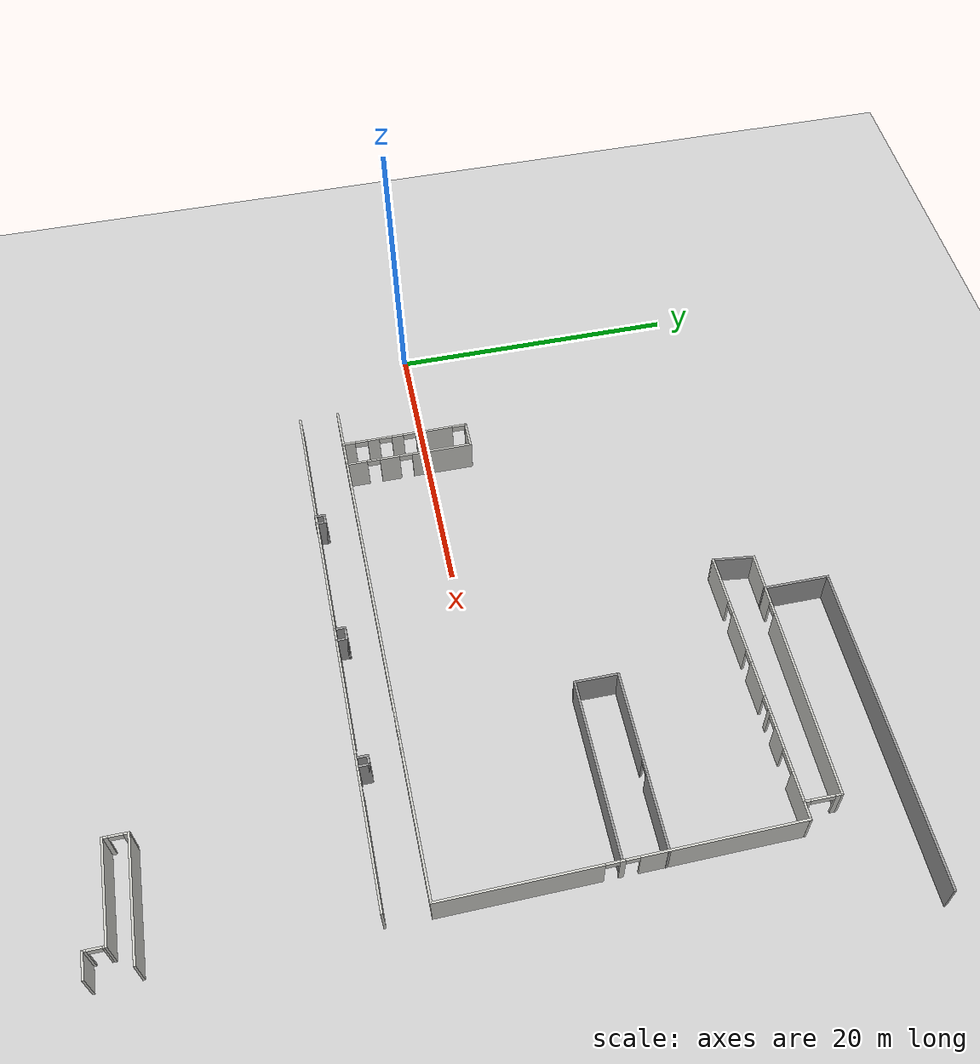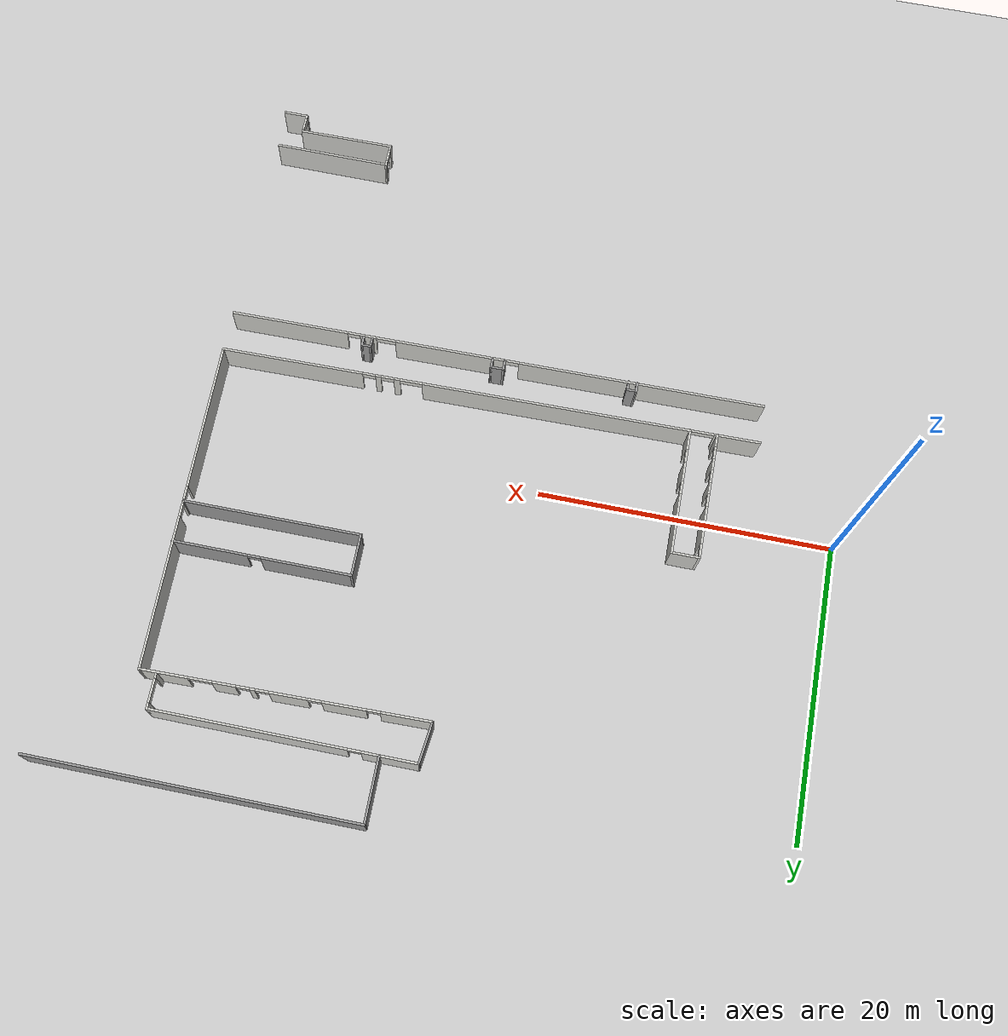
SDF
<sdf version="1.6">
 <world name="default">
  <model name="ground_plane">
   <static>1</static>
   <link name="link">
    <collision name="collision">
     <geometry><plane><normal>0 0 1</normal><size>100 100</size></plane></geometry>
     <surface><friction><ode><mu>100</mu><mu2>50</mu2></ode></friction></surface>
    </collision>
    <visual name="visual">
     <cast_shadows>0</cast_shadows>
     <geometry><plane><normal>0 0 1</normal><size>100 100</size></plane></geometry>
     <material>
      <script><uri>file://media/materials/scripts/gazebo.material</uri><name>Gazebo/Grey</name></script>
     </material>
    </visual>
   </link>
  </model>
  <model name="hospital_LG_detailed">
   <pose>51.8521 -11.413 0 0 -0 0</pose>
   <link name="Wall_10">
    <pose>-27.1821 5.83422 0 0 -0 0.009948</pose>
    <visual name="Wall_10_Visual_0">
     <pose>-17.1568 0 1.25 0 -0 0</pose>
     <geometry><box><size>3.16982 0.15 2.5</size></box></geometry>
     <material>
      <script><uri>file://media/materials/scripts/gazebo.material</uri><name>Gazebo/CeilingTiled</name></script>
      <ambient>1 1 1 1</ambient>
     </material>
     <meta><layer>0</layer></meta>
    </visual>
    <collision name="Wall_10_Collision_0">
     <geometry><box><size>3.16982 0.15 2.5</size></box></geometry>
     <pose>-17.1568 0 1.25 0 -0 0</pose>
    </collision>
    <visual name="Wall_10_Visual_1">
     <pose>-4.69451 0 1.25 0 -0 0</pose>
     <geometry><box><size>18.5953 0.15 2.5</size></box></geometry>
     <material>
      <script><uri>file://media/materials/scripts/gazebo.material</uri><name>Gazebo/CeilingTiled</name></script>
      <ambient>1 1 1 1</ambient>
     </material>
     <meta><layer>0</layer></meta>
    </visual>
    <collision name="Wall_10_Collision_1">
     <geometry><box><size>18.5953 0.15 2.5</size></box></geometry>
     <pose>-4.69451 0 1.25 0 -0 0</pose>
    </collision>
    <visual name="Wall_10_Visual_2">
     <pose>6.37471 0 1.25 0 -0 0</pose>
     <geometry><box><size>0.439418 0.15 2.5</size></box></geometry>
     <material>
      <script><uri>file://media/materials/scripts/gazebo.material</uri><name>Gazebo/CeilingTiled</name></script>
      <ambient>1 1 1 1</ambient>
     </material>
     <meta><layer>0</layer></meta>
    </visual>
    <collision name="Wall_10_Collision_2">
     <geometry><box><size>0.439418 0.15 2.5</size></box></geometry>
     <pose>6.37471 0 1.25 0 -0 0</pose>
    </collision>
    <visual name="Wall_10_Visual_3">
     <pose>7.69224 0 1.25 0 -0 0</pose>
     <geometry><box><size>0.39565 0.15 2.5</size></box></geometry>
     <material>
      <script><uri>file://media/materials/scripts/gazebo.material</uri><name>Gazebo/CeilingTiled</name></script>
      <ambient>1 1 1 1</ambient>
     </material>
     <meta><layer>0</layer></meta>
    </visual>
    <collision name="Wall_10_Collision_3">
     <geometry><box><size>0.39565 0.15 2.5</size></box></geometry>
     <pose>7.69224 0 1.25 0 -0 0</pose>
    </collision>
    <visual name="Wall_10_Visual_4">
     <pose>13.7659 0 1.25 0 -0 0</pose>
     <geometry><box><size>9.95166 0.15 2.5</size></box></geometry>
     <material>
      <script><uri>file://media/materials/scripts/gazebo.material</uri><name>Gazebo/CeilingTiled</name></script>
      <ambient>1 1 1 1</ambient>
     </material>
     <meta><layer>0</layer></meta>
    </visual>
    <collision name="Wall_10_Collision_4">
     <geometry><box><size>9.95166 0.15 2.5</size></box></geometry>
     <pose>13.7659 0 1.25 0 -0 0</pose>
    </collision>
    <visual name="Wall_10_Visual_5">
     <pose>-14.782 0 2.25 0 -0 0</pose>
     <geometry><box><size>1.57977 0.15 0.5</size></box></geometry>
     <material>
      <script><uri>file://media/materials/scripts/gazebo.material</uri><name>Gazebo/CeilingTiled</name></script>
      <ambient>1 1 1 1</ambient>
     </material>
     <meta><layer>0</layer></meta>
    </visual>
    <collision name="Wall_10_Collision_5">
     <geometry><box><size>1.57977 0.15 0.5</size></box></geometry>
     <pose>-14.782 0 2.25 0 -0 0</pose>
    </collision>
    <visual name="Wall_10_Visual_6">
     <pose>5.37906 0 2.25 0 -0 0</pose>
     <geometry><box><size>1.55189 0.15 0.5</size></box></geometry>
     <material>
      <script><uri>file://media/materials/scripts/gazebo.material</uri><name>Gazebo/CeilingTiled</name></script>
      <ambient>1 1 1 1</ambient>
     </material>
     <meta><layer>0</layer></meta>
    </visual>
    <collision name="Wall_10_Collision_6">
     <geometry><box><size>1.55189 0.15 0.5</size></box></geometry>
     <pose>5.37906 0 2.25 0 -0 0</pose>
    </collision>
    <visual name="Wall_10_Visual_7">
     <pose>7.04442 0 2.25 0 -0 0</pose>
     <geometry><box><size>0.9 0.15 0.5</size></box></geometry>
     <material>
      <script><uri>file://media/materials/scripts/gazebo.material</uri><name>Gazebo/CeilingTiled</name></script>
      <ambient>1 1 1 1</ambient>
     </material>
     <meta><layer>0</layer></meta>
    </visual>
    <collision name="Wall_10_Collision_7">
     <geometry><box><size>0.9 0.15 0.5</size></box></geometry>
     <pose>7.04442 0 2.25 0 -0 0</pose>
    </collision>
    <visual name="Wall_10_Visual_8">
     <pose>8.34007 0 2.25 0 -0 0</pose>
     <geometry><box><size>0.9 0.15 0.5</size></box></geometry>
     <material>
      <script><uri>file://media/materials/scripts/gazebo.material</uri><name>Gazebo/CeilingTiled</name></script>
      <ambient>1 1 1 1</ambient>
     </material>
     <meta><layer>0</layer></meta>
    </visual>
    <collision name="Wall_10_Collision_8">
     <geometry><box><size>0.9 0.15 0.5</size></box></geometry>
     <pose>8.34007 0 2.25 0 -0 0</pose>
    </collision>
   </link>
   <link name="Wall_11">
    <pose>-8.67103 17.5035 0 0 -0 1.58503</pose>
    <visual name="Wall_11_Visual_0">
     <pose>-6.35487 0 1.25 0 -0 0</pose>
     <geometry><box><size>10.3922 0.15 2.5</size></box></geometry>
     <material>
      <script><uri>file://media/materials/scripts/gazebo.material</uri><name>Gazebo/CeilingTiled</name></script>
      <ambient>1 1 1 1</ambient>
     </material>
     <meta><layer>0</layer></meta>
    </visual>
    <collision name="Wall_11_Collision_0">
     <geometry><box><size>10.3922 0.15 2.5</size></box></geometry>
     <pose>-6.35487 0 1.25 0 -0 0</pose>
    </collision>
    <visual name="Wall_11_Visual_1">
     <pose>-0.090557 0 1.25 0 -0 0</pose>
     <geometry><box><size>0.336415 0.15 2.5</size></box></geometry>
     <material>
      <script><uri>file://media/materials/scripts/gazebo.material</uri><name>Gazebo/CeilingTiled</name></script>
      <ambient>1 1 1 1</ambient>
     </material>
     <meta><layer>0</layer></meta>
    </visual>
    <collision name="Wall_11_Collision_1">
     <geometry><box><size>0.336415 0.15 2.5</size></box></geometry>
     <pose>-0.090557 0 1.25 0 -0 0</pose>
    </collision>
    <visual name="Wall_11_Visual_2">
     <pose>6.26431 0 1.25 0 -0 0</pose>
     <geometry><box><size>10.5733 0.15 2.5</size></box></geometry>
     <material>
      <script><uri>file://media/materials/scripts/gazebo.material</uri><name>Gazebo/CeilingTiled</name></script>
      <ambient>1 1 1 1</ambient>
     </material>
     <meta><layer>0</layer></meta>
    </visual>
    <collision name="Wall_11_Collision_2">
     <geometry><box><size>10.5733 0.15 2.5</size></box></geometry>
     <pose>6.26431 0 1.25 0 -0 0</pose>
    </collision>
    <visual name="Wall_11_Visual_3">
     <pose>-0.708764 0 2.25 0 -0 0</pose>
     <geometry><box><size>0.9 0.15 0.5</size></box></geometry>
     <material>
      <script><uri>file://media/materials/scripts/gazebo.material</uri><name>Gazebo/CeilingTiled</name></script>
      <ambient>1 1 1 1</ambient>
     </material>
     <meta><layer>0</layer></meta>
    </visual>
    <collision name="Wall_11_Collision_3">
     <geometry><box><size>0.9 0.15 0.5</size></box></geometry>
     <pose>-0.708764 0 2.25 0 -0 0</pose>
    </collision>
    <visual name="Wall_11_Visual_4">
     <pose>0.527651 0 2.25 0 -0 0</pose>
     <geometry><box><size>0.9 0.15 0.5</size></box></geometry>
     <material>
      <script><uri>file://media/materials/scripts/gazebo.material</uri><name>Gazebo/CeilingTiled</name></script>
      <ambient>1 1 1 1</ambient>
     </material>
     <meta><layer>0</layer></meta>
    </visual>
    <collision name="Wall_11_Collision_4">
     <geometry><box><size>0.9 0.15 0.5</size></box></geometry>
     <pose>0.527651 0 2.25 0 -0 0</pose>
    </collision>
   </link>
   <link name="Wall_13">
    <pose>-18.3592 28.7968 0 0 -0 -3.12256</pose>
    <visual name="Wall_13_Visual_0">
     <pose>-7.97779 0 1.25 0 -0 0</pose>
     <geometry><box><size>3.27194 0.15 2.5</size></box></geometry>
     <material>
      <script><uri>file://media/materials/scripts/gazebo.material</uri><name>Gazebo/CeilingTiled</name></script>
      <ambient>1 1 1 1</ambient>
     </material>
     <meta><layer>0</layer></meta>
    </visual>
    <collision name="Wall_13_Collision_0">
     <geometry><box><size>3.27194 0.15 2.5</size></box></geometry>
     <pose>-7.97779 0 1.25 0 -0 0</pose>
    </collision>
    <visual name="Wall_13_Visual_1">
     <pose>-3.98875 0 1.25 0 -0 0</pose>
     <geometry><box><size>1.56041 0.15 2.5</size></box></geometry>
     <material>
      <script><uri>file://media/materials/scripts/gazebo.material</uri><name>Gazebo/CeilingTiled</name></script>
      <ambient>1 1 1 1</ambient>
     </material>
     <meta><layer>0</layer></meta>
    </visual>
    <collision name="Wall_13_Collision_1">
     <geometry><box><size>1.56041 0.15 2.5</size></box></geometry>
     <pose>-3.98875 0 1.25 0 -0 0</pose>
    </collision>
    <visual name="Wall_13_Visual_2">
     <pose>-2.12344 0 1.25 0 -0 0</pose>
     <geometry><box><size>0.370227 0.15 2.5</size></box></geometry>
     <material>
      <script><uri>file://media/materials/scripts/gazebo.material</uri><name>Gazebo/CeilingTiled</name></script>
      <ambient>1 1 1 1</ambient>
     </material>
     <meta><layer>0</layer></meta>
    </visual>
    <collision name="Wall_13_Collision_2">
     <geometry><box><size>0.370227 0.15 2.5</size></box></geometry>
     <pose>-2.12344 0 1.25 0 -0 0</pose>
    </collision>
    <visual name="Wall_13_Visual_3">
     <pose>0.232285 0 1.25 0 -0 0</pose>
     <geometry><box><size>2.54121 0.15 2.5</size></box></geometry>
     <material>
      <script><uri>file://media/materials/scripts/gazebo.material</uri><name>Gazebo/CeilingTiled</name></script>
      <ambient>1 1 1 1</ambient>
     </material>
     <meta><layer>0</layer></meta>
    </visual>
    <collision name="Wall_13_Collision_3">
     <geometry><box><size>2.54121 0.15 2.5</size></box></geometry>
     <pose>0.232285 0 1.25 0 -0 0</pose>
    </collision>
    <visual name="Wall_13_Visual_4">
     <pose>3.84972 0 1.25 0 -0 0</pose>
     <geometry><box><size>2.89366 0.15 2.5</size></box></geometry>
     <material>
      <script><uri>file://media/materials/scripts/gazebo.material</uri><name>Gazebo/CeilingTiled</name></script>
      <ambient>1 1 1 1</ambient>
     </material>
     <meta><layer>0</layer></meta>
    </visual>
    <collision name="Wall_13_Collision_4">
     <geometry><box><size>2.89366 0.15 2.5</size></box></geometry>
     <pose>3.84972 0 1.25 0 -0 0</pose>
    </collision>
    <visual name="Wall_13_Visual_5">
     <pose>7.90516 0 1.25 0 -0 0</pose>
     <geometry><box><size>3.4172 0.15 2.5</size></box></geometry>
     <material>
      <script><uri>file://media/materials/scripts/gazebo.material</uri><name>Gazebo/CeilingTiled</name></script>
      <ambient>1 1 1 1</ambient>
     </material>
     <meta><layer>0</layer></meta>
    </visual>
    <collision name="Wall_13_Collision_5">
     <geometry><box><size>3.4172 0.15 2.5</size></box></geometry>
     <pose>7.90516 0 1.25 0 -0 0</pose>
    </collision>
    <visual name="Wall_13_Visual_6">
     <pose>-5.55539 0 2.25 0 -0 0</pose>
     <geometry><box><size>1.57286 0.15 0.5</size></box></geometry>
     <material>
      <script><uri>file://media/materials/scripts/gazebo.material</uri><name>Gazebo/CeilingTiled</name></script>
      <ambient>1 1 1 1</ambient>
     </material>
     <meta><layer>0</layer></meta>
    </visual>
    <collision name="Wall_13_Collision_6">
     <geometry><box><size>1.57286 0.15 0.5</size></box></geometry>
     <pose>-5.55539 0 2.25 0 -0 0</pose>
    </collision>
    <visual name="Wall_13_Visual_7">
     <pose>-2.75855 0 2.25 0 -0 0</pose>
     <geometry><box><size>0.9 0.15 0.5</size></box></geometry>
     <material>
      <script><uri>file://media/materials/scripts/gazebo.material</uri><name>Gazebo/CeilingTiled</name></script>
      <ambient>1 1 1 1</ambient>
     </material>
     <meta><layer>0</layer></meta>
    </visual>
    <collision name="Wall_13_Collision_7">
     <geometry><box><size>0.9 0.15 0.5</size></box></geometry>
     <pose>-2.75855 0 2.25 0 -0 0</pose>
    </collision>
    <visual name="Wall_13_Visual_8">
     <pose>-1.48832 0 2.25 0 -0 0</pose>
     <geometry><box><size>0.9 0.15 0.5</size></box></geometry>
     <material>
      <script><uri>file://media/materials/scripts/gazebo.material</uri><name>Gazebo/CeilingTiled</name></script>
      <ambient>1 1 1 1</ambient>
     </material>
     <meta><layer>0</layer></meta>
    </visual>
    <collision name="Wall_13_Collision_8">
     <geometry><box><size>0.9 0.15 0.5</size></box></geometry>
     <pose>-1.48832 0 2.25 0 -0 0</pose>
    </collision>
    <visual name="Wall_13_Visual_9">
     <pose>1.95289 0 2.25 0 -0 0</pose>
     <geometry><box><size>0.9 0.15 0.5</size></box></geometry>
     <material>
      <script><uri>file://media/materials/scripts/gazebo.material</uri><name>Gazebo/CeilingTiled</name></script>
      <ambient>1 1 1 1</ambient>
     </material>
     <meta><layer>0</layer></meta>
    </visual>
    <collision name="Wall_13_Collision_9">
     <geometry><box><size>0.9 0.15 0.5</size></box></geometry>
     <pose>1.95289 0 2.25 0 -0 0</pose>
    </collision>
    <visual name="Wall_13_Visual_10">
     <pose>5.74655 0 2.25 0 -0 0</pose>
     <geometry><box><size>0.9 0.15 0.5</size></box></geometry>
     <material>
      <script><uri>file://media/materials/scripts/gazebo.material</uri><name>Gazebo/CeilingTiled</name></script>
      <ambient>1 1 1 1</ambient>
     </material>
     <meta><layer>0</layer></meta>
    </visual>
    <collision name="Wall_13_Collision_10">
     <geometry><box><size>0.9 0.15 0.5</size></box></geometry>
     <pose>5.74655 0 2.25 0 -0 0</pose>
    </collision>
   </link>
   <link name="Wall_14">
    <collision name="Wall_14_Collision">
     <geometry><box><size>2.90995 0.15 2.5</size></box></geometry>
     <pose>0 0 1.25 0 -0 0</pose>
    </collision>
    <visual name="Wall_14_Visual">
     <pose>0 0 1.25 0 -0 0</pose>
     <geometry><box><size>2.90995 0.15 2.5</size></box></geometry>
     <material>
      <script><uri>file://media/materials/scripts/gazebo.material</uri><name>Gazebo/Grey</name></script>
      <ambient>1 1 1 1</ambient>
     </material>
     <meta><layer>0</layer></meta>
    </visual>
    <pose>-27.7494 29.986 0 0 -0 1.45527</pose>
   </link>
   <link name="Wall_15">
    <pose>-18.7903 31.3568 0 0 -0 0</pose>
    <visual name="Wall_15_Visual_0">
     <pose>-7.00157 0 1.25 0 -0 0</pose>
     <geometry><box><size>3.74685 0.15 2.5</size></box></geometry>
     <material>
      <script><uri>file://media/materials/scripts/gazebo.material</uri><name>Gazebo/CeilingTiled</name></script>
      <ambient>1 1 1 1</ambient>
     </material>
     <meta><layer>0</layer></meta>
    </visual>
    <collision name="Wall_15_Collision_0">
     <geometry><box><size>3.74685 0.15 2.5</size></box></geometry>
     <pose>-7.00157 0 1.25 0 -0 0</pose>
    </collision>
    <visual name="Wall_15_Visual_1">
     <pose>2.32343 0 1.25 0 -0 0</pose>
     <geometry><box><size>13.1031 0.15 2.5</size></box></geometry>
     <material>
      <script><uri>file://media/materials/scripts/gazebo.material</uri><name>Gazebo/CeilingTiled</name></script>
      <ambient>1 1 1 1</ambient>
     </material>
     <meta><layer>0</layer></meta>
    </visual>
    <collision name="Wall_15_Collision_1">
     <geometry><box><size>13.1031 0.15 2.5</size></box></geometry>
     <pose>2.32343 0 1.25 0 -0 0</pose>
    </collision>
    <visual name="Wall_15_Visual_2">
     <pose>-4.67815 0 2.25 0 -0 0</pose>
     <geometry><box><size>0.9 0.15 0.5</size></box></geometry>
     <material>
      <script><uri>file://media/materials/scripts/gazebo.material</uri><name>Gazebo/CeilingTiled</name></script>
      <ambient>1 1 1 1</ambient>
     </material>
     <meta><layer>0</layer></meta>
    </visual>
    <collision name="Wall_15_Collision_2">
     <geometry><box><size>0.9 0.15 0.5</size></box></geometry>
     <pose>-4.67815 0 2.25 0 -0 0</pose>
    </collision>
   </link>
   <link name="Wall_16">
    <pose>-9.99034 30.1818 0 0 -0 -1.5708</pose>
    <visual name="Wall_16_Visual_0">
     <pose>-1.01228 0 1.25 0 -0 0</pose>
     <geometry><box><size>0.475433 0.15 2.5</size></box></geometry>
     <material>
      <script><uri>file://media/materials/scripts/gazebo.material</uri><name>Gazebo/CeilingTiled</name></script>
      <ambient>1 1 1 1</ambient>
     </material>
     <meta><layer>0</layer></meta>
    </visual>
    <collision name="Wall_16_Collision_0">
     <geometry><box><size>0.475433 0.15 2.5</size></box></geometry>
     <pose>-1.01228 0 1.25 0 -0 0</pose>
    </collision>
    <visual name="Wall_16_Visual_1">
     <pose>1.03033 0 1.25 0 -0 0</pose>
     <geometry><box><size>0.439346 0.15 2.5</size></box></geometry>
     <material>
      <script><uri>file://media/materials/scripts/gazebo.material</uri><name>Gazebo/CeilingTiled</name></script>
      <ambient>1 1 1 1</ambient>
     </material>
     <meta><layer>0</layer></meta>
    </visual>
    <collision name="Wall_16_Collision_1">
     <geometry><box><size>0.439346 0.15 2.5</size></box></geometry>
     <pose>1.03033 0 1.25 0 -0 0</pose>
    </collision>
    <visual name="Wall_16_Visual_2">
     <pose>0.018044 0 2.25 0 -0 0</pose>
     <geometry><box><size>1.58522 0.15 0.5</size></box></geometry>
     <material>
      <script><uri>file://media/materials/scripts/gazebo.material</uri><name>Gazebo/CeilingTiled</name></script>
      <ambient>1 1 1 1</ambient>
     </material>
     <meta><layer>0</layer></meta>
    </visual>
    <collision name="Wall_16_Collision_2">
     <geometry><box><size>1.58522 0.15 0.5</size></box></geometry>
     <pose>0.018044 0 2.25 0 -0 0</pose>
    </collision>
   </link>
   <link name="Wall_28">
    <pose>-27.1505 3.04074 0 0 -0 0.00604</pose>
    <visual name="Wall_28_Visual_0">
     <pose>-10.1827 0 1.25 0 -0 0</pose>
     <geometry><box><size>17.0442 0.15 2.5</size></box></geometry>
     <material>
      <script><uri>file://media/materials/scripts/gazebo.material</uri><name>Gazebo/CeilingTiled</name></script>
      <ambient>1 1 1 1</ambient>
     </material>
     <meta><layer>0</layer></meta>
    </visual>
    <collision name="Wall_28_Collision_0">
     <geometry><box><size>17.0442 0.15 2.5</size></box></geometry>
     <pose>-10.1827 0 1.25 0 -0 0</pose>
    </collision>
    <visual name="Wall_28_Visual_1">
     <pose>3.1441 0 1.25 0 -0 0</pose>
     <geometry><box><size>7.80932 0.15 2.5</size></box></geometry>
     <material>
      <script><uri>file://media/materials/scripts/gazebo.material</uri><name>Gazebo/CeilingTiled</name></script>
      <ambient>1 1 1 1</ambient>
     </material>
     <meta><layer>0</layer></meta>
    </visual>
    <collision name="Wall_28_Collision_1">
     <geometry><box><size>7.80932 0.15 2.5</size></box></geometry>
     <pose>3.1441 0 1.25 0 -0 0</pose>
    </collision>
    <visual name="Wall_28_Visual_2">
     <pose>8.98516 0 1.25 0 -0 0</pose>
     <geometry><box><size>1.15534 0.15 2.5</size></box></geometry>
     <material>
      <script><uri>file://media/materials/scripts/gazebo.material</uri><name>Gazebo/CeilingTiled</name></script>
      <ambient>1 1 1 1</ambient>
     </material>
     <meta><layer>0</layer></meta>
    </visual>
    <collision name="Wall_28_Collision_2">
     <geometry><box><size>1.15534 0.15 2.5</size></box></geometry>
     <pose>8.98516 0 1.25 0 -0 0</pose>
    </collision>
    <visual name="Wall_28_Visual_3">
     <pose>14.5838 0 1.25 0 -0 0</pose>
     <geometry><box><size>8.24194 0.15 2.5</size></box></geometry>
     <material>
      <script><uri>file://media/materials/scripts/gazebo.material</uri><name>Gazebo/CeilingTiled</name></script>
      <ambient>1 1 1 1</ambient>
     </material>
     <meta><layer>0</layer></meta>
    </visual>
    <collision name="Wall_28_Collision_3">
     <geometry><box><size>8.24194 0.15 2.5</size></box></geometry>
     <pose>14.5838 0 1.25 0 -0 0</pose>
    </collision>
    <visual name="Wall_28_Visual_4">
     <pose>-1.21056 0 2.25 0 -0 0</pose>
     <geometry><box><size>0.9 0.15 0.5</size></box></geometry>
     <material>
      <script><uri>file://media/materials/scripts/gazebo.material</uri><name>Gazebo/CeilingTiled</name></script>
      <ambient>1 1 1 1</ambient>
     </material>
     <meta><layer>0</layer></meta>
    </visual>
    <collision name="Wall_28_Collision_4">
     <geometry><box><size>0.9 0.15 0.5</size></box></geometry>
     <pose>-1.21056 0 2.25 0 -0 0</pose>
    </collision>
    <visual name="Wall_28_Visual_5">
     <pose>7.72812 0 2.25 0 -0 0</pose>
     <geometry><box><size>1.35873 0.15 0.5</size></box></geometry>
     <material>
      <script><uri>file://media/materials/scripts/gazebo.material</uri><name>Gazebo/CeilingTiled</name></script>
      <ambient>1 1 1 1</ambient>
     </material>
     <meta><layer>0</layer></meta>
    </visual>
    <collision name="Wall_28_Collision_5">
     <geometry><box><size>1.35873 0.15 0.5</size></box></geometry>
     <pose>7.72812 0 2.25 0 -0 0</pose>
    </collision>
    <visual name="Wall_28_Visual_6">
     <pose>10.0128 0 2.25 0 -0 0</pose>
     <geometry><box><size>0.9 0.15 0.5</size></box></geometry>
     <material>
      <script><uri>file://media/materials/scripts/gazebo.material</uri><name>Gazebo/CeilingTiled</name></script>
      <ambient>1 1 1 1</ambient>
     </material>
     <meta><layer>0</layer></meta>
    </visual>
    <collision name="Wall_28_Collision_6">
     <geometry><box><size>0.9 0.15 0.5</size></box></geometry>
     <pose>10.0128 0 2.25 0 -0 0</pose>
    </collision>
   </link>
   <link name="Wall_31">
    <collision name="Wall_31_Collision">
     <geometry><box><size>8.15245 0.15 2.5</size></box></geometry>
     <pose>0 0 1.25 0 -0 0</pose>
    </collision>
    <visual name="Wall_31_Visual">
     <pose>0 0 1.25 0 -0 0</pose>
     <geometry><box><size>8.15245 0.15 2.5</size></box></geometry>
     <material>
      <script><uri>file://media/materials/scripts/gazebo.material</uri><name>Gazebo/CeilingTiled</name></script>
      <ambient>1 1 1 1</ambient>
     </material>
     <meta><layer>0</layer></meta>
    </visual>
    <pose>-12.4424 -10.7513 0 0 -0 3.13242</pose>
   </link>
   <link name="Wall_32">
    <pose>-16.4435 -11.5145 0 0 -0 -1.5708</pose>
    <visual name="Wall_32_Visual_0">
     <pose>-0.667686 0 1.25 0 -0 0</pose>
     <geometry><box><size>0.414629 0.15 2.5</size></box></geometry>
     <material>
      <script><uri>file://media/materials/scripts/gazebo.material</uri><name>Gazebo/CeilingTiled</name></script>
      <ambient>1 1 1 1</ambient>
     </material>
     <meta><layer>0</layer></meta>
    </visual>
    <collision name="Wall_32_Collision_0">
     <geometry><box><size>0.414629 0.15 2.5</size></box></geometry>
     <pose>-0.667686 0 1.25 0 -0 0</pose>
    </collision>
    <visual name="Wall_32_Visual_1">
     <pose>0.657314 0 1.25 0 -0 0</pose>
     <geometry><box><size>0.435371 0.15 2.5</size></box></geometry>
     <material>
      <script><uri>file://media/materials/scripts/gazebo.material</uri><name>Gazebo/CeilingTiled</name></script>
      <ambient>1 1 1 1</ambient>
     </material>
     <meta><layer>0</layer></meta>
    </visual>
    <collision name="Wall_32_Collision_1">
     <geometry><box><size>0.435371 0.15 2.5</size></box></geometry>
     <pose>0.657314 0 1.25 0 -0 0</pose>
    </collision>
    <visual name="Wall_32_Visual_2">
     <pose>-0.010371 0 2.25 0 -0 0</pose>
     <geometry><box><size>0.9 0.15 0.5</size></box></geometry>
     <material>
      <script><uri>file://media/materials/scripts/gazebo.material</uri><name>Gazebo/CeilingTiled</name></script>
      <ambient>1 1 1 1</ambient>
     </material>
     <meta><layer>0</layer></meta>
    </visual>
    <collision name="Wall_32_Collision_2">
     <geometry><box><size>0.9 0.15 0.5</size></box></geometry>
     <pose>-0.010371 0 2.25 0 -0 0</pose>
    </collision>
   </link>
   <link name="Wall_33">
    <collision name="Wall_33_Collision">
     <geometry><box><size>6.75 0.15 2.5</size></box></geometry>
     <pose>0 0 1.25 0 -0 0</pose>
    </collision>
    <visual name="Wall_33_Visual">
     <pose>0 0 1.25 0 -0 0</pose>
     <geometry><box><size>6.75 0.15 2.5</size></box></geometry>
     <material>
      <script><uri>file://media/materials/scripts/gazebo.material</uri><name>Gazebo/CeilingTiled</name></script>
      <ambient>1 1 1 1</ambient>
     </material>
     <meta><layer>0</layer></meta>
    </visual>
    <pose>-13.1313 -12.3023 0 0 -0 0</pose>
   </link>
   <link name="Wall_34">
    <pose>-9.83739 -12.9826 0 0 -0 -1.56164</pose>
    <visual name="Wall_34_Visual_0">
     <pose>-0.609081 0 1.25 0 -0 0</pose>
     <geometry><box><size>0.267979 0.15 2.5</size></box></geometry>
     <material>
      <script><uri>file://media/materials/scripts/gazebo.material</uri><name>Gazebo/CeilingTiled</name></script>
      <ambient>1 1 1 1</ambient>
     </material>
     <meta><layer>0</layer></meta>
    </visual>
    <collision name="Wall_34_Collision_0">
     <geometry><box><size>0.267979 0.15 2.5</size></box></geometry>
     <pose>-0.609081 0 1.25 0 -0 0</pose>
    </collision>
    <visual name="Wall_34_Visual_1">
     <pose>0.583989 0 1.25 0 -0 0</pose>
     <geometry><box><size>0.318161 0.15 2.5</size></box></geometry>
     <material>
      <script><uri>file://media/materials/scripts/gazebo.material</uri><name>Gazebo/CeilingTiled</name></script>
      <ambient>1 1 1 1</ambient>
     </material>
     <meta><layer>0</layer></meta>
    </visual>
    <collision name="Wall_34_Collision_1">
     <geometry><box><size>0.318161 0.15 2.5</size></box></geometry>
     <pose>0.583989 0 1.25 0 -0 0</pose>
    </collision>
    <visual name="Wall_34_Visual_2">
     <pose>-0.025091 0 2.25 0 -0 0</pose>
     <geometry><box><size>0.9 0.15 0.5</size></box></geometry>
     <material>
      <script><uri>file://media/materials/scripts/gazebo.material</uri><name>Gazebo/CeilingTiled</name></script>
      <ambient>1 1 1 1</ambient>
     </material>
     <meta><layer>0</layer></meta>
    </visual>
    <collision name="Wall_34_Collision_2">
     <geometry><box><size>0.9 0.15 0.5</size></box></geometry>
     <pose>-0.025091 0 2.25 0 -0 0</pose>
    </collision>
   </link>
   <link name="Wall_35">
    <collision name="Wall_35_Collision">
     <geometry><box><size>1.75 0.15 2.5</size></box></geometry>
     <pose>0 0 1.25 0 -0 0</pose>
    </collision>
    <visual name="Wall_35_Visual">
     <pose>0 0 1.25 0 -0 0</pose>
     <geometry><box><size>1.75 0.15 2.5</size></box></geometry>
     <material>
      <script><uri>file://media/materials/scripts/gazebo.material</uri><name>Gazebo/CeilingTiled</name></script>
      <ambient>1 1 1 1</ambient>
     </material>
     <meta><layer>0</layer></meta>
    </visual>
    <pose>-9.03127 -13.6384 0 0 -0 0</pose>
   </link>
   <link name="Wall_41">
    <collision name="Wall_41_Collision">
     <geometry><box><size>0.75 0.15 2.5</size></box></geometry>
     <pose>0 0 1.25 0 -0 0</pose>
    </collision>
    <visual name="Wall_41_Visual">
     <pose>0 0 1.25 0 -0 0</pose>
     <geometry><box><size>0.75 0.15 2.5</size></box></geometry>
     <material>
      <script><uri>file://media/materials/scripts/gazebo.material</uri><name>Gazebo/Grey</name></script>
      <ambient>1 1 1 1</ambient>
     </material>
     <meta><layer>0</layer></meta>
    </visual>
    <pose>-18.4597 3.51808 0 0 -0 1.5708</pose>
   </link>
   <link name="Wall_42">
    <collision name="Wall_42_Collision">
     <geometry><box><size>0.75 0.15 2.5</size></box></geometry>
     <pose>0 0 1.25 0 -0 0</pose>
    </collision>
    <visual name="Wall_42_Visual">
     <pose>0 0 1.25 0 -0 0</pose>
     <geometry><box><size>0.75 0.15 2.5</size></box></geometry>
     <material>
      <script><uri>file://media/materials/scripts/gazebo.material</uri><name>Gazebo/Grey</name></script>
      <ambient>1 1 1 1</ambient>
     </material>
     <meta><layer>0</layer></meta>
    </visual>
    <pose>-18.1597 3.81808 0 0 -0 0</pose>
   </link>
   <link name="Wall_43">
    <collision name="Wall_43_Collision">
     <geometry><box><size>0.75 0.15 2.5</size></box></geometry>
     <pose>0 0 1.25 0 -0 0</pose>
    </collision>
    <visual name="Wall_43_Visual">
     <pose>0 0 1.25 0 -0 0</pose>
     <geometry><box><size>0.75 0.15 2.5</size></box></geometry>
     <material>
      <script><uri>file://media/materials/scripts/gazebo.material</uri><name>Gazebo/Grey</name></script>
      <ambient>1 1 1 1</ambient>
     </material>
     <meta><layer>0</layer></meta>
    </visual>
    <pose>-17.8597 3.51808 0 0 -0 -1.5708</pose>
   </link>
   <link name="Wall_47">
    <collision name="Wall_47_Collision">
     <geometry><box><size>0.75 0.15 2.5</size></box></geometry>
     <pose>0 0 1.25 0 -0 0</pose>
    </collision>
    <visual name="Wall_47_Visual">
     <pose>0 0 1.25 0 -0 0</pose>
     <geometry><box><size>0.75 0.15 2.5</size></box></geometry>
     <material>
      <script><uri>file://media/materials/scripts/gazebo.material</uri><name>Gazebo/Grey</name></script>
      <ambient>1 1 1 1</ambient>
     </material>
     <meta><layer>0</layer></meta>
    </visual>
    <pose>-27.8184 3.40325 0 0 -0 1.5708</pose>
   </link>
   <link name="Wall_48">
    <collision name="Wall_48_Collision">
     <geometry><box><size>1 0.15 2.5</size></box></geometry>
     <pose>0 0 1.25 0 -0 0</pose>
    </collision>
    <visual name="Wall_48_Visual">
     <pose>0 0 1.25 0 -0 0</pose>
     <geometry><box><size>1 0.15 2.5</size></box></geometry>
     <material>
      <script><uri>file://media/materials/scripts/gazebo.material</uri><name>Gazebo/Grey</name></script>
      <ambient>1 1 1 1</ambient>
     </material>
     <meta><layer>0</layer></meta>
    </visual>
    <pose>-27.3934 3.70325 0 0 -0 0</pose>
   </link>
   <link name="Wall_49">
    <collision name="Wall_49_Collision">
     <geometry><box><size>0.75 0.15 2.5</size></box></geometry>
     <pose>0 0 1.25 0 -0 0</pose>
    </collision>
    <visual name="Wall_49_Visual">
     <pose>0 0 1.25 0 -0 0</pose>
     <geometry><box><size>0.75 0.15 2.5</size></box></geometry>
     <material>
      <script><uri>file://media/materials/scripts/gazebo.material</uri><name>Gazebo/Grey</name></script>
      <ambient>1 1 1 1</ambient>
     </material>
     <meta><layer>0</layer></meta>
    </visual>
    <pose>-26.9684 3.40325 0 0 -0 -1.5708</pose>
   </link>
   <link name="Wall_51">
    <collision name="Wall_51_Collision">
     <geometry><box><size>0.75 0.15 2.5</size></box></geometry>
     <pose>0 0 1.25 0 -0 0</pose>
    </collision>
    <visual name="Wall_51_Visual">
     <pose>0 0 1.25 0 -0 0</pose>
     <geometry><box><size>0.75 0.15 2.5</size></box></geometry>
     <material>
      <script><uri>file://media/materials/scripts/gazebo.material</uri><name>Gazebo/Grey</name></script>
      <ambient>1 1 1 1</ambient>
     </material>
     <meta><layer>0</layer></meta>
    </visual>
    <pose>-37.0615 3.23897 0 0 -0 1.5708</pose>
   </link>
   <link name="Wall_52">
    <collision name="Wall_52_Collision">
     <geometry><box><size>0.75 0.15 2.5</size></box></geometry>
     <pose>0 0 1.25 0 -0 0</pose>
    </collision>
    <visual name="Wall_52_Visual">
     <pose>0 0 1.25 0 -0 0</pose>
     <geometry><box><size>0.75 0.15 2.5</size></box></geometry>
     <material>
      <script><uri>file://media/materials/scripts/gazebo.material</uri><name>Gazebo/Grey</name></script>
      <ambient>1 1 1 1</ambient>
     </material>
     <meta><layer>0</layer></meta>
    </visual>
    <pose>-36.7615 3.53897 0 0 -0 0</pose>
   </link>
   <link name="Wall_53">
    <collision name="Wall_53_Collision">
     <geometry><box><size>0.75 0.15 2.5</size></box></geometry>
     <pose>0 0 1.25 0 -0 0</pose>
    </collision>
    <visual name="Wall_53_Visual">
     <pose>0 0 1.25 0 -0 0</pose>
     <geometry><box><size>0.75 0.15 2.5</size></box></geometry>
     <material>
      <script><uri>file://media/materials/scripts/gazebo.material</uri><name>Gazebo/Grey</name></script>
      <ambient>1 1 1 1</ambient>
     </material>
     <meta><layer>0</layer></meta>
    </visual>
    <pose>-36.4615 3.23897 0 0 -0 -1.5708</pose>
   </link>
   <link name="Wall_55">
    <pose>-42.9534 10.1067 0 0 -0 1.5708</pose>
    <visual name="Wall_55_Visual_0">
     <pose>-4.04831 0 1.25 0 -0 0</pose>
     <geometry><box><size>0.903376 0.15 2.5</size></box></geometry>
     <material>
      <script><uri>file://media/materials/scripts/gazebo.material</uri><name>Gazebo/CeilingTiled</name></script>
      <ambient>1 1 1 1</ambient>
     </material>
     <meta><layer>0</layer></meta>
    </visual>
    <collision name="Wall_55_Collision_0">
     <geometry><box><size>0.903376 0.15 2.5</size></box></geometry>
     <pose>-4.04831 0 1.25 0 -0 0</pose>
    </collision>
    <visual name="Wall_55_Visual_1">
     <pose>-2.27786 0 1.25 0 -0 0</pose>
     <geometry><box><size>0.837526 0.15 2.5</size></box></geometry>
     <material>
      <script><uri>file://media/materials/scripts/gazebo.material</uri><name>Gazebo/CeilingTiled</name></script>
      <ambient>1 1 1 1</ambient>
     </material>
     <meta><layer>0</layer></meta>
    </visual>
    <collision name="Wall_55_Collision_1">
     <geometry><box><size>0.837526 0.15 2.5</size></box></geometry>
     <pose>-2.27786 0 1.25 0 -0 0</pose>
    </collision>
    <visual name="Wall_55_Visual_2">
     <pose>-0.540336 0 1.25 0 -0 0</pose>
     <geometry><box><size>0.837524 0.15 2.5</size></box></geometry>
     <material>
      <script><uri>file://media/materials/scripts/gazebo.material</uri><name>Gazebo/CeilingTiled</name></script>
      <ambient>1 1 1 1</ambient>
     </material>
     <meta><layer>0</layer></meta>
    </visual>
    <collision name="Wall_55_Collision_2">
     <geometry><box><size>0.837524 0.15 2.5</size></box></geometry>
     <pose>-0.540336 0 1.25 0 -0 0</pose>
    </collision>
    <visual name="Wall_55_Visual_3">
     <pose>2.10878 0 1.25 0 -0 0</pose>
     <geometry><box><size>2.6607 0.15 2.5</size></box></geometry>
     <material>
      <script><uri>file://media/materials/scripts/gazebo.material</uri><name>Gazebo/CeilingTiled</name></script>
      <ambient>1 1 1 1</ambient>
     </material>
     <meta><layer>0</layer></meta>
    </visual>
    <collision name="Wall_55_Collision_3">
     <geometry><box><size>2.6607 0.15 2.5</size></box></geometry>
     <pose>2.10878 0 1.25 0 -0 0</pose>
    </collision>
    <visual name="Wall_55_Visual_4">
     <pose>4.41957 0 1.25 0 -0 0</pose>
     <geometry><box><size>0.16087 0.15 2.5</size></box></geometry>
     <material>
      <script><uri>file://media/materials/scripts/gazebo.material</uri><name>Gazebo/CeilingTiled</name></script>
      <ambient>1 1 1 1</ambient>
     </material>
     <meta><layer>0</layer></meta>
    </visual>
    <collision name="Wall_55_Collision_4">
     <geometry><box><size>0.16087 0.15 2.5</size></box></geometry>
     <pose>4.41957 0 1.25 0 -0 0</pose>
    </collision>
    <visual name="Wall_55_Visual_5">
     <pose>-3.14662 0 2.25 0 -0 0</pose>
     <geometry><box><size>0.9 0.15 0.5</size></box></geometry>
     <material>
      <script><uri>file://media/materials/scripts/gazebo.material</uri><name>Gazebo/CeilingTiled</name></script>
      <ambient>1 1 1 1</ambient>
     </material>
     <meta><layer>0</layer></meta>
    </visual>
    <collision name="Wall_55_Collision_5">
     <geometry><box><size>0.9 0.15 0.5</size></box></geometry>
     <pose>-3.14662 0 2.25 0 -0 0</pose>
    </collision>
    <visual name="Wall_55_Visual_6">
     <pose>-1.4091 0 2.25 0 -0 0</pose>
     <geometry><box><size>0.9 0.15 0.5</size></box></geometry>
     <material>
      <script><uri>file://media/materials/scripts/gazebo.material</uri><name>Gazebo/CeilingTiled</name></script>
      <ambient>1 1 1 1</ambient>
     </material>
     <meta><layer>0</layer></meta>
    </visual>
    <collision name="Wall_55_Collision_6">
     <geometry><box><size>0.9 0.15 0.5</size></box></geometry>
     <pose>-1.4091 0 2.25 0 -0 0</pose>
    </collision>
    <visual name="Wall_55_Visual_7">
     <pose>0.328426 0 2.25 0 -0 0</pose>
     <geometry><box><size>0.9 0.15 0.5</size></box></geometry>
     <material>
      <script><uri>file://media/materials/scripts/gazebo.material</uri><name>Gazebo/CeilingTiled</name></script>
      <ambient>1 1 1 1</ambient>
     </material>
     <meta><layer>0</layer></meta>
    </visual>
    <collision name="Wall_55_Collision_7">
     <geometry><box><size>0.9 0.15 0.5</size></box></geometry>
     <pose>0.328426 0 2.25 0 -0 0</pose>
    </collision>
    <visual name="Wall_55_Visual_8">
     <pose>3.88913 0 2.25 0 -0 0</pose>
     <geometry><box><size>0.9 0.15 0.5</size></box></geometry>
     <material>
      <script><uri>file://media/materials/scripts/gazebo.material</uri><name>Gazebo/CeilingTiled</name></script>
      <ambient>1 1 1 1</ambient>
     </material>
     <meta><layer>0</layer></meta>
    </visual>
    <collision name="Wall_55_Collision_8">
     <geometry><box><size>0.9 0.15 0.5</size></box></geometry>
     <pose>3.88913 0 2.25 0 -0 0</pose>
    </collision>
   </link>
   <link name="Wall_56">
    <collision name="Wall_56_Collision">
     <geometry><box><size>2 0.15 2.5</size></box></geometry>
     <pose>0 0 1.25 0 -0 0</pose>
    </collision>
    <visual name="Wall_56_Visual">
     <pose>0 0 1.25 0 -0 0</pose>
     <geometry><box><size>2 0.15 2.5</size></box></geometry>
     <material>
      <script><uri>file://media/materials/scripts/gazebo.material</uri><name>Gazebo/CeilingTiled</name></script>
      <ambient>1 1 1 1</ambient>
     </material>
     <meta><layer>0</layer></meta>
    </visual>
    <pose>-42.0284 14.5317 0 0 -0 0</pose>
   </link>
   <link name="Wall_57">
    <pose>-41.1034 10.1067 0 0 -0 -1.5708</pose>
    <visual name="Wall_57_Visual_0">
     <pose>-2.35778 0 1.25 0 -0 0</pose>
     <geometry><box><size>4.28443 0.15 2.5</size></box></geometry>
     <material>
      <script><uri>file://media/materials/scripts/gazebo.material</uri><name>Gazebo/CeilingTiled</name></script>
      <ambient>1 1 1 1</ambient>
     </material>
     <meta><layer>0</layer></meta>
    </visual>
    <collision name="Wall_57_Collision_0">
     <geometry><box><size>4.28443 0.15 2.5</size></box></geometry>
     <pose>-2.35778 0 1.25 0 -0 0</pose>
    </collision>
    <visual name="Wall_57_Visual_1">
     <pose>1.38463 0 1.25 0 -0 0</pose>
     <geometry><box><size>1.40038 0.15 2.5</size></box></geometry>
     <material>
      <script><uri>file://media/materials/scripts/gazebo.material</uri><name>Gazebo/CeilingTiled</name></script>
      <ambient>1 1 1 1</ambient>
     </material>
     <meta><layer>0</layer></meta>
    </visual>
    <collision name="Wall_57_Collision_1">
     <geometry><box><size>1.40038 0.15 2.5</size></box></geometry>
     <pose>1.38463 0 1.25 0 -0 0</pose>
    </collision>
    <visual name="Wall_57_Visual_2">
     <pose>3.74241 0 1.25 0 -0 0</pose>
     <geometry><box><size>1.51518 0.15 2.5</size></box></geometry>
     <material>
      <script><uri>file://media/materials/scripts/gazebo.material</uri><name>Gazebo/CeilingTiled</name></script>
      <ambient>1 1 1 1</ambient>
     </material>
     <meta><layer>0</layer></meta>
    </visual>
    <collision name="Wall_57_Collision_2">
     <geometry><box><size>1.51518 0.15 2.5</size></box></geometry>
     <pose>3.74241 0 1.25 0 -0 0</pose>
    </collision>
    <visual name="Wall_57_Visual_3">
     <pose>0.234434 0 2.25 0 -0 0</pose>
     <geometry><box><size>0.9 0.15 0.5</size></box></geometry>
     <material>
      <script><uri>file://media/materials/scripts/gazebo.material</uri><name>Gazebo/CeilingTiled</name></script>
      <ambient>1 1 1 1</ambient>
     </material>
     <meta><layer>0</layer></meta>
    </visual>
    <collision name="Wall_57_Collision_3">
     <geometry><box><size>0.9 0.15 0.5</size></box></geometry>
     <pose>0.234434 0 2.25 0 -0 0</pose>
    </collision>
    <visual name="Wall_57_Visual_4">
     <pose>2.53482 0 2.25 0 -0 0</pose>
     <geometry><box><size>0.9 0.15 0.5</size></box></geometry>
     <material>
      <script><uri>file://media/materials/scripts/gazebo.material</uri><name>Gazebo/CeilingTiled</name></script>
      <ambient>1 1 1 1</ambient>
     </material>
     <meta><layer>0</layer></meta>
    </visual>
    <collision name="Wall_57_Collision_4">
     <geometry><box><size>0.9 0.15 0.5</size></box></geometry>
     <pose>2.53482 0 2.25 0 -0 0</pose>
    </collision>
   </link>
   <link name="Wall_67">
    <collision name="Wall_67_Collision">
     <geometry><box><size>12.25 0.15 2.5</size></box></geometry>
     <pose>0 0 1.25 0 -0 0</pose>
    </collision>
    <visual name="Wall_67_Visual">
     <pose>0 0 1.25 0 -0 0</pose>
     <geometry><box><size>12.25 0.15 2.5</size></box></geometry>
     <material>
      <script><uri>file://media/materials/scripts/gazebo.material</uri><name>Gazebo/Grey</name></script>
      <ambient>1 1 1 1</ambient>
     </material>
     <meta><layer>0</layer></meta>
    </visual>
    <pose>-14.7373 17.3831 0 0 -0 3.14159</pose>
   </link>
   <link name="Wall_68">
    <collision name="Wall_68_Collision">
     <geometry><box><size>3 0.15 2.5</size></box></geometry>
     <pose>0 0 1.25 0 -0 0</pose>
    </collision>
    <visual name="Wall_68_Visual">
     <pose>0 0 1.25 0 -0 0</pose>
     <geometry><box><size>3 0.15 2.5</size></box></geometry>
     <material>
      <script><uri>file://media/materials/scripts/gazebo.material</uri><name>Gazebo/Grey</name></script>
      <ambient>1 1 1 1</ambient>
     </material>
     <meta><layer>0</layer></meta>
    </visual>
    <pose>-20.7873 18.8081 0 0 -0 1.5708</pose>
   </link>
   <link name="Wall_69">
    <pose>-14.7373 20.2331 0 0 -0 0</pose>
    <visual name="Wall_69_Visual_0">
     <pose>-3.03424 0 1.25 0 -0 0</pose>
     <geometry><box><size>6.18152 0.15 2.5</size></box></geometry>
     <material>
      <script><uri>file://media/materials/scripts/gazebo.material</uri><name>Gazebo/Grey</name></script>
      <ambient>1 1 1 1</ambient>
     </material>
     <meta><layer>0</layer></meta>
    </visual>
    <collision name="Wall_69_Collision_0">
     <geometry><box><size>6.18152 0.15 2.5</size></box></geometry>
     <pose>-3.03424 0 1.25 0 -0 0</pose>
    </collision>
    <visual name="Wall_69_Visual_1">
     <pose>3.54076 0 1.25 0 -0 0</pose>
     <geometry><box><size>5.16848 0.15 2.5</size></box></geometry>
     <material>
      <script><uri>file://media/materials/scripts/gazebo.material</uri><name>Gazebo/Grey</name></script>
      <ambient>1 1 1 1</ambient>
     </material>
     <meta><layer>0</layer></meta>
    </visual>
    <collision name="Wall_69_Collision_1">
     <geometry><box><size>5.16848 0.15 2.5</size></box></geometry>
     <pose>3.54076 0 1.25 0 -0 0</pose>
    </collision>
    <visual name="Wall_69_Visual_2">
     <pose>0.506523 0 2.25 0 -0 0</pose>
     <geometry><box><size>0.9 0.15 0.5</size></box></geometry>
     <material>
      <script><uri>file://media/materials/scripts/gazebo.material</uri><name>Gazebo/Grey</name></script>
      <ambient>1 1 1 1</ambient>
     </material>
     <meta><layer>0</layer></meta>
    </visual>
    <collision name="Wall_69_Collision_2">
     <geometry><box><size>0.9 0.15 0.5</size></box></geometry>
     <pose>0.506523 0 2.25 0 -0 0</pose>
    </collision>
   </link>
   <link name="Wall_73">
    <collision name="Wall_73_Collision">
     <geometry><box><size>22.25 0.15 2.5</size></box></geometry>
     <pose>0 0 1.25 0 -0 0</pose>
    </collision>
    <visual name="Wall_73_Visual">
     <pose>0 0 1.25 0 -0 0</pose>
     <geometry><box><size>22.25 0.15 2.5</size></box></geometry>
     <material>
      <script><uri>file://media/materials/scripts/gazebo.material</uri><name>Gazebo/Grey</name></script>
      <ambient>1 1 1 1</ambient>
     </material>
     <meta><layer>0</layer></meta>
    </visual>
    <pose>-14.0048 35.688 0 0 -0 3.14159</pose>
   </link>
   <link name="Wall_74">
    <collision name="Wall_74_Collision">
     <geometry><box><size>4.5 0.15 2.5</size></box></geometry>
     <pose>0 0 1.25 0 -0 0</pose>
    </collision>
    <visual name="Wall_74_Visual">
     <pose>0 0 1.25 0 -0 0</pose>
     <geometry><box><size>4.5 0.15 2.5</size></box></geometry>
     <material>
      <script><uri>file://media/materials/scripts/gazebo.material</uri><name>Gazebo/Grey</name></script>
      <ambient>1 1 1 1</ambient>
     </material>
     <meta><layer>0</layer></meta>
    </visual>
    <pose>-25.0548 33.513 0 0 -0 -1.5708</pose>
   </link>
   <static>1</static>
  </model>
 </world>
</sdf>
